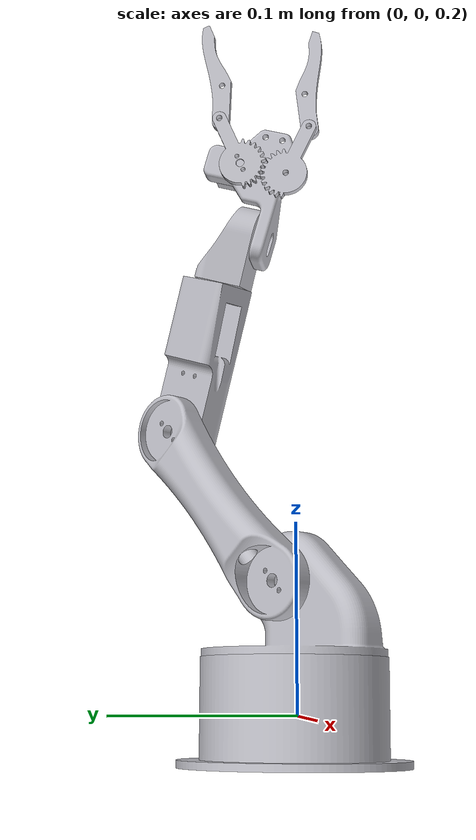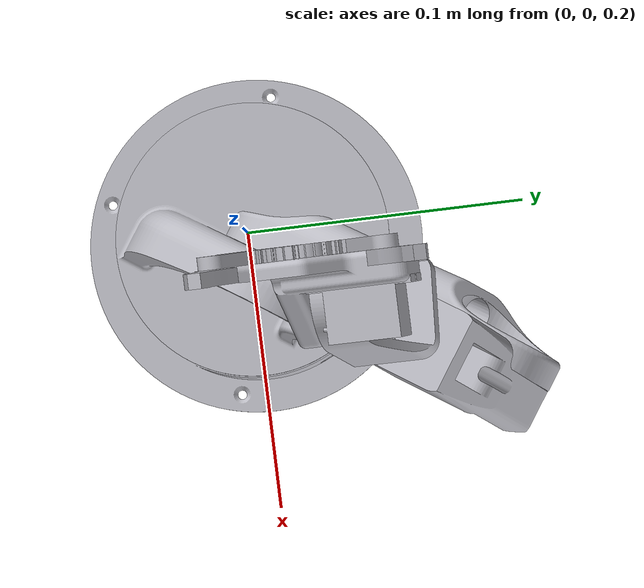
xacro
<?xml version="1.0" ?>
<robot name="robot" xmlns:xacro="http://www.ros.org/wiki/xacro">

<xacro:include filename="$(find robot_description)/urdf/materials.xacro" />
<xacro:include filename="$(find robot_description)/urdf/robot.trans" />
<xacro:include filename="$(find robot_description)/urdf/robot.gazebo" />

<gazebo>
  <plugin name="gazebo_ros_control" filename="libgazebo_ros_control.so">
    <robotNamespace>/</robotNamespace>
  </plugin>
</gazebo>

<link name="world"/>
<joint name="base_joint" type="fixed">
<parent link="world"/>
<child link="base_link"/>
<origin rpy="0 0 0" xyz="0.0 0.0 0.17"/>
</joint>

<link name="base_link">
  <inertial>
    <origin xyz="0.005160276109435298 0.0027084129987447227 0.026026914877480482" rpy="0 0.2 0"/>
    <mass value="0.7428696086251847"/>
    <inertia ixx="0.001021" iyy="0.001049" izz="0.001616" ixy="-2e-05" iyz="7e-06" ixz="7e-06"/>
  </inertial>
  <visual>
    <origin xyz="0 0 0" rpy="0 0 0"/>
    <geometry>
      <mesh filename="package://robot_description/meshes/base_link.stl" scale="0.001 0.001 0.001"/>
    </geometry>
    <material name="silver"/>
  </visual>
  <collision>
    <origin xyz="0 0 0" rpy="0 0 0"/>
    <geometry>
      <mesh filename="package://robot_description/meshes/base_link.stl" scale="0.001 0.001 0.001"/>
    </geometry>
  </collision>
</link>

<link name="Arm_02.step_1">
  <inertial>
    <origin xyz="-0.003592446758183772 -0.014135752925911696 0.0394951780060995" rpy="0 0.2 0"/>
    <mass value="0.3697152157519886"/>
    <inertia ixx="0.000407" iyy="0.000389" izz="0.000105" ixy="-3e-05" iyz="8.1e-05" ixz="6.6e-05"/>
  </inertial>
  <visual>
    <origin xyz="-0.055174 -0.076664 -0.191534" rpy="0 0 0"/>
    <geometry>
      <mesh filename="package://robot_description/meshes/Arm_02.step_1.stl" scale="0.001 0.001 0.001"/>
    </geometry>
    <material name="silver"/>
  </visual>
  <collision>
    <origin xyz="-0.055174 -0.076664 -0.191534" rpy="0 0 0"/>
    <geometry>
      <mesh filename="package://robot_description/meshes/Arm_02.step_1.stl" scale="0.001 0.001 0.001"/>
    </geometry>
  </collision>
</link>

<link name="Arm_03.step_1">
  <inertial>
    <origin xyz="-0.008471262397111417 -0.00952529589921284 0.014418181004394182" rpy="0 0.2 0"/>
    <mass value="0.12929190705351673"/>
    <inertia ixx="3e-05" iyy="3.6e-05" izz="2.4e-05" ixy="-1e-06" iyz="9e-06" ixz="2e-06"/>
  </inertial>
  <visual>
    <origin xyz="-0.038998 -0.045832 -0.274607" rpy="0 0 0"/>
    <geometry>
      <mesh filename="package://robot_description/meshes/Arm_03.step_1.stl" scale="0.001 0.001 0.001"/>
    </geometry>
    <material name="silver"/>
  </visual>
  <collision>
    <origin xyz="-0.038998 -0.045832 -0.274607" rpy="0 0 0"/>
    <geometry>
      <mesh filename="package://robot_description/meshes/Arm_03.step_1.stl" scale="0.001 0.001 0.001"/>
    </geometry>
  </collision>
</link>

<link name="Part_2_gear_2.step_1">
  <inertial>
    <origin xyz="-0.0019345128307690623 -0.005439855470670305 0.00023644869023009552" rpy="0 0 0"/>
    <mass value="0.020866715753086653"/>
    <inertia ixx="4e-06" iyy="1e-06" izz="3e-06" ixy="0.0" iyz="-0.0" ixz="-0.0"/>
  </inertial>
  <visual>
    <origin xyz="-0.015316 -0.006244 -0.330746" rpy="0 0 0"/>
    <geometry>
      <mesh filename="package://robot_description/meshes/Part_2_gear_2.step_1.stl" scale="0.001 0.001 0.001"/>
    </geometry>
    <material name="silver"/>
  </visual>
  <collision>
    <origin xyz="-0.015316 -0.006244 -0.330746" rpy="0 0 0"/>
    <geometry>
      <mesh filename="package://robot_description/meshes/Part_2_gear_2.step_1.stl" scale="0.001 0.001 0.001"/>
    </geometry>
  </collision>
</link>

<link name="Gripper_Base.step_1">
  <inertial>
    <origin xyz="-0.006039901919946484 -0.0027152948165855076 0.025224632891133025" rpy="0 0 0"/>
    <mass value="0.1259188443483361"/>
    <inertia ixx="7.1e-05" iyy="6.2e-05" izz="2.1e-05" ixy="0.0" iyz="-4e-06" ixz="1e-05"/>
  </inertial>
  <visual>
    <origin xyz="-0.028594 -0.025213 -0.296325" rpy="0 0 0"/>
    <geometry>
      <mesh filename="package://robot_description/meshes/Gripper_Base.step_1.stl" scale="0.001 0.001 0.001"/>
    </geometry>
    <material name="silver"/>
  </visual>
  <collision>
    <origin xyz="-0.028594 -0.025213 -0.296325" rpy="0 0 0"/>
    <geometry>
      <mesh filename="package://robot_description/meshes/Gripper_Base.step_1.stl" scale="0.001 0.001 0.001"/>
    </geometry>
  </collision>
</link>

<link name="Servo_motor_micro_9g.step_1">
  <inertial>
    <origin xyz="0.014115900275686065 0.004671900820636288 0.0010411024196047558" rpy="0 0 0"/>
    <mass value="0.05634268516919814"/>
    <inertia ixx="3e-06" iyy="4e-06" izz="5e-06" ixy="-0.0" iyz="-1e-06" ixz="-0.0"/>
  </inertial>
  <visual>
    <origin xyz="-0.015122 -0.032168 -0.337924" rpy="0 0 0"/>
    <geometry>
      <mesh filename="package://robot_description/meshes/Servo_motor_micro_9g.step_1.stl" scale="0.001 0.001 0.001"/>
    </geometry>
    <material name="silver"/>
  </visual>
  <collision>
    <origin xyz="-0.015122 -0.032168 -0.337924" rpy="0 0 0"/>
    <geometry>
      <mesh filename="package://robot_description/meshes/Servo_motor_micro_9g.step_1.stl" scale="0.001 0.001 0.001"/>
    </geometry>
  </collision>
</link>

<link name="Part_1_gear_2.step_1">
  <inertial>
    <origin xyz="-0.0019952182319104145 0.0042041364935786404 0.0036744285304463054" rpy="0 0 0"/>
    <mass value="0.020267194631427798"/>
    <inertia ixx="4e-06" iyy="1e-06" izz="2e-06" ixy="0.0" iyz="-1e-06" ixz="-0.0"/>
  </inertial>
  <visual>
    <origin xyz="-0.015122 -0.032168 -0.337924" rpy="0 0 0"/>
    <geometry>
      <mesh filename="package://robot_description/meshes/Part_1_gear_2.step_1.stl" scale="0.001 0.001 0.001"/>
    </geometry>
    <material name="silver"/>
  </visual>
  <collision>
    <origin xyz="-0.015122 -0.032168 -0.337924" rpy="0 0 0"/>
    <geometry>
      <mesh filename="package://robot_description/meshes/Part_1_gear_2.step_1.stl" scale="0.001 0.001 0.001"/>
    </geometry>
  </collision>
</link>

<link name="robot_Gripper.step1_v1_1">
  <inertial>
    <origin xyz="0.002340459323116762 -0.002989299603796597 0.003797449185666102" rpy="0 0 0"/>
    <mass value="0.020053604711887"/>
    <inertia ixx="6e-06" iyy="6e-06" izz="0.0" ixy="0.0" iyz="1e-06" ixz="-0.0"/>
  </inertial>
  <visual>
    <origin xyz="-0.015937 0.02234 -0.350609" rpy="0 0 0"/>
    <geometry>
      <mesh filename="package://robot_description/meshes/robot_Gripper.step1_v1_1.stl" scale="0.001 0.001 0.001"/>
    </geometry>
    <material name="silver"/>
  </visual>
  <collision>
    <origin xyz="-0.015937 0.02234 -0.350609" rpy="0 0 0"/>
    <geometry>
      <mesh filename="package://robot_description/meshes/robot_Gripper.step1_v1_1.stl" scale="0.001 0.001 0.001"/>
    </geometry>
  </collision>
</link>

<link name="Waist.step_1">
  <inertial>
    <origin xyz="0.006414134056216764 -0.003189639915015318 0.01955990648290272" rpy="0 0 0"/>
    <mass value="0.5781357922590845"/>
    <inertia ixx="0.000493" iyy="0.00044" izz="0.000467" ixy="-6.4e-05" iyz="-1.8e-05" ixz="-7.1e-05"/>
  </inertial>
  <visual>
    <origin xyz="-0.003126 -0.001866 -0.059863" rpy="0 0 0"/>
    <geometry>
      <mesh filename="package://robot_description/meshes/Waist.step_1.stl" scale="0.001 0.001 0.001"/>
    </geometry>
    <material name="silver"/>
  </visual>
  <collision>
    <origin xyz="-0.003126 -0.001866 -0.059863" rpy="0 0 0"/>
    <geometry>
      <mesh filename="package://robot_description/meshes/Waist.step_1.stl" scale="0.001 0.001 0.001"/>
    </geometry>
  </collision>
</link>

<link name="Arm_01.step_1">
  <inertial>
    <origin xyz="0.01466432189256404 0.03730233924473003 0.0453548332023245" rpy="0 0 0"/>
    <mass value="0.5035804638838921"/>
    <inertia ixx="0.000749" iyy="0.000603" izz="0.000388" ixy="-0.000161" iyz="-0.00031" ixz="-0.000197"/>
  </inertial>
  <visual>
    <origin xyz="-0.012969 -0.010778 -0.100553" rpy="0 0 0"/>
    <geometry>
      <mesh filename="package://robot_description/meshes/Arm_01.step_1.stl" scale="0.001 0.001 0.001"/>
    </geometry>
    <material name="silver"/>
  </visual>
  <collision>
    <origin xyz="-0.012969 -0.010778 -0.100553" rpy="0 0 0"/>
    <geometry>
      <mesh filename="package://robot_description/meshes/Arm_01.step_1.stl" scale="0.001 0.001 0.001"/>
    </geometry>
  </collision>
</link>

<link name="Gripper.step_1">
  <inertial>
    <origin xyz="0.0023163136457740787 0.00044229427431653756 0.004823903757310233" rpy="0 0 0"/>
    <mass value="0.02005360471188671"/>
    <inertia ixx="6e-06" iyy="5e-06" izz="1e-06" ixy="0.0" iyz="2e-06" ixz="-0.0"/>
  </inertial>
  <visual>
    <origin xyz="-0.015498 -0.043643 -0.372614" rpy="0 0 0"/>
    <geometry>
      <mesh filename="package://robot_description/meshes/Gripper.step_1.stl" scale="0.001 0.001 0.001"/>
    </geometry>
    <material name="silver"/>
  </visual>
  <collision>
    <origin xyz="-0.015498 -0.043643 -0.372614" rpy="0 0 0"/>
    <geometry>
      <mesh filename="package://robot_description/meshes/Gripper.step_1.stl" scale="0.001 0.001 0.001"/>
    </geometry>
  </collision>
</link>

<joint name="Revolute_4" type="revolute">
  <origin xyz="0.042205 0.065886 0.090981" rpy="0 0 0"/>
  <parent link="Arm_01.step_1"/>
  <child link="Arm_02.step_1"/>
  <axis xyz="-0.828979 0.558915 -0.020195"/>
  <limit upper="3.141593" lower="0.0" effort="100" velocity="100"/>
</joint>

<joint name="Revolute_5" type="revolute">
  <origin xyz="-0.016176 -0.030832 0.083073" rpy="0 0 0"/>
  <parent link="Arm_02.step_1"/>
  <child link="Arm_03.step_1"/>
  <axis xyz="-0.200205 -0.26284 0.94384"/>
  <limit upper="6.283185" lower="0.0" effort="100" velocity="100"/>
</joint>

<joint name="Revolute_8" type="revolute">
  <origin xyz="-0.013278 -0.018969 0.034421" rpy="0 0 0"/>
  <parent link="Gripper_Base.step_1"/>
  <child link="Part_2_gear_2.step_1"/>
  <axis xyz="0.999826 0.011538 -0.014668"/>
  <limit upper="0.698132" lower="-0.558505" effort="100" velocity="100"/>
</joint>

<joint name="Revolute_24" type="revolute">
  <origin xyz="-0.010404 -0.020619 0.021718" rpy="0 0 0"/>
  <parent link="Arm_03.step_1"/>
  <child link="Gripper_Base.step_1"/>
  <axis xyz="-0.007206 0.963712 0.266845"/>
  <limit upper="1.570796" lower="-1.570796" effort="100" velocity="100"/>
</joint>

<joint name="Rigid_25" type="fixed">
  <origin xyz="-0.013472 0.006955 0.041599" rpy="0 0 0"/>
  <parent link="Gripper_Base.step_1"/>
  <child link="Servo_motor_micro_9g.step_1"/>
</joint>

<joint name="Revolute_26" type="revolute">
  <origin xyz="0.0 0.0 0.0" rpy="0 0 0"/>
  <parent link="Servo_motor_micro_9g.step_1"/>
  <child link="Part_1_gear_2.step_1"/>
  <axis xyz="-0.999826 -0.011538 0.014668"/>
  <limit upper="1.239184" lower="0.034907" effort="100" velocity="100"/>
</joint>

<joint name="Revolute_31" type="revolute">
  <origin xyz="0.000621 -0.028584 0.019863" rpy="0 0 0"/>
  <parent link="Part_2_gear_2.step_1"/>
  <child link="robot_Gripper.step1_v1_1"/>
  <axis xyz="-0.999826 -0.011538 0.014668"/>
  <limit upper="1.134464" lower="-0.645772" effort="100" velocity="100"/>
</joint>

<joint name="Revolute_42" type="continuous">
  <origin xyz="0.003126 0.001866 0.059863" rpy="0 0 0"/>
  <parent link="base_link"/>
  <child link="Waist.step_1"/>
  <axis xyz="-0.030811 -0.009585 0.999479"/>
</joint>

<joint name="Revolute_43" type="continuous">
  <origin xyz="0.009843 0.008912 0.04069" rpy="0 0 0"/>
  <parent link="Waist.step_1"/>
  <child link="Arm_01.step_1"/>
  <axis xyz="0.828979 -0.558915 0.020195"/>
</joint>

<joint name="Revolute_44" type="revolute">
  <origin xyz="0.000376 0.011475 0.03469" rpy="0 0 0"/>
  <parent link="Part_1_gear_2.step_1"/>
  <child link="Gripper.step_1"/>
  <axis xyz="0.999826 0.011538 -0.014668"/>
  <limit upper="1.204277" lower="0.0" effort="100" velocity="100"/>
</joint>

<transmission name="Revolute_42_tran">
  <type>transmission_interface/SimpleTransmission</type>
  <joint name="Revolute_42">
    <hardwareInterface>hardware_interface/PositionJointInterface</hardwareInterface>
  </joint>
  <actuator name="Revolute_42_actr">
    <hardwareInterface>hardware_interface/PositionJointInterface</hardwareInterface>
    <mechanicalReduction>1</mechanicalReduction>
  </actuator>
</transmission>

<transmission name="Revolute_4_tran">
  <type>transmission_interface/SimpleTransmission</type>
  <joint name="Revolute_4">
    <hardwareInterface>hardware_interface/PositionJointInterface</hardwareInterface>
  </joint>
  <actuator name="Revolute_4_actr">
    <hardwareInterface>hardware_interface/PositionJointInterface</hardwareInterface>
    <mechanicalReduction>1</mechanicalReduction>
  </actuator>
</transmission>

<transmission name="Revolute_5_tran">
  <type>transmission_interface/SimpleTransmission</type>
  <joint name="Revolute_5">
    <hardwareInterface>hardware_interface/PositionJointInterface</hardwareInterface>
  </joint>
  <actuator name="Revolute_5_actr">
    <hardwareInterface>hardware_interface/PositionJointInterface</hardwareInterface>
    <mechanicalReduction>1</mechanicalReduction>
  </actuator>
</transmission>

<transmission name="Revolute_8_tran">
  <type>transmission_interface/SimpleTransmission</type>
  <joint name="Revolute_8">
    <hardwareInterface>hardware_interface/PositionJointInterface</hardwareInterface>
  </joint>
  <actuator name="Revolute_8_actr">
    <hardwareInterface>hardware_interface/PositionJointInterface</hardwareInterface>
    <mechanicalReduction>1</mechanicalReduction>
  </actuator>
</transmission>

<transmission name="Revolute_24_tran">
  <type>transmission_interface/SimpleTransmission</type>
  <joint name="Revolute_24">
    <hardwareInterface>hardware_interface/PositionJointInterface</hardwareInterface>
  </joint>
  <actuator name="Revolute_24_actr">
    <hardwareInterface>hardware_interface/PositionJointInterface</hardwareInterface>
    <mechanicalReduction>1</mechanicalReduction>
  </actuator>
</transmission>

<transmission name="Revolute_26_tran">
  <type>transmission_interface/SimpleTransmission</type>
  <joint name="Revolute_26">
    <hardwareInterface>hardware_interface/PositionJointInterface</hardwareInterface>
  </joint>
  <actuator name="Revolute_26_actr">
    <hardwareInterface>hardware_interface/PositionJointInterface</hardwareInterface>
    <mechanicalReduction>1</mechanicalReduction>
  </actuator>
</transmission>

<transmission name="Revolute_31_tran">
  <type>transmission_interface/SimpleTransmission</type>
  <joint name="Revolute_31">
    <hardwareInterface>hardware_interface/PositionJointInterface</hardwareInterface>
  </joint>
  <actuator name="Revolute_31_actr">
    <hardwareInterface>hardware_interface/PositionJointInterface</hardwareInterface>
    <mechanicalReduction>1</mechanicalReduction>
  </actuator>
</transmission>

<transmission name="Revolute_44_tran">
  <type>transmission_interface/SimpleTransmission</type>
  <joint name="Revolute_44">
    <hardwareInterface>hardware_interface/PositionJointInterface</hardwareInterface>
  </joint>
  <actuator name="Revolute_44_actr">
    <hardwareInterface>hardware_interface/PositionJointInterface</hardwareInterface>
    <mechanicalReduction>1</mechanicalReduction>
  </actuator>
</transmission>

<transmission name="Revolute_42_tran">
  <type>transmission_interface/SimpleTransmission</type>
  <joint name="Revolute_42">
    <hardwareInterface>hardware_interface/PositionJointInterface</hardwareInterface>
  </joint>
  <actuator name="Revolute_42_actr">
    <hardwareInterface>hardware_interface/PositionJointInterface</hardwareInterface>
    <mechanicalReduction>1</mechanicalReduction>
  </actuator>
</transmission>

<transmission name="Revolute_43_tran">
  <type>transmission_interface/SimpleTransmission</type>
  <joint name="Revolute_43">
    <hardwareInterface>hardware_interface/PositionJointInterface</hardwareInterface>
  </joint>
  <actuator name="Revolute_43_actr">
    <hardwareInterface>hardware_interface/PositionJointInterface</hardwareInterface>
    <mechanicalReduction>1</mechanicalReduction>
  </actuator>
</transmission>

<gazebo reference="base_link">
  <material>${body_color}</material>
  <mu1>0.2</mu1>
  <mu2>0.2</mu2>
  <selfCollide>true</selfCollide>
  <gravity>true</gravity>
</gazebo>

<gazebo reference="Arm_02.step_1">
  <material>${body_color}</material>
  <mu1>0.2</mu1>
  <mu2>0.2</mu2>
  <selfCollide>true</selfCollide>
</gazebo>

<gazebo reference="Arm_03.step_1">
  <material>${body_color}</material>
  <mu1>0.2</mu1>
  <mu2>0.2</mu2>
  <selfCollide>true</selfCollide>
</gazebo>

<gazebo reference="Part_2_gear_2.step_1">
  <material>${body_color}</material>
  <mu1>0.2</mu1>
  <mu2>0.2</mu2>
  <selfCollide>true</selfCollide>
</gazebo>

<gazebo reference="Gripper_Base.step_1">
  <material>${body_color}</material>
  <mu1>0.2</mu1>
  <mu2>0.2</mu2>
  <selfCollide>true</selfCollide>
</gazebo>

<gazebo reference="Servo_motor_micro_9g.step_1">
  <material>${body_color}</material>
  <mu1>0.2</mu1>
  <mu2>0.2</mu2>
  <selfCollide>true</selfCollide>
</gazebo>

<gazebo reference="Part_1_gear_2.step_1">
  <material>${body_color}</material>
  <mu1>0.2</mu1>
  <mu2>0.2</mu2>
  <selfCollide>true</selfCollide>
</gazebo>

<gazebo reference="Gripper.step_1">
  <material>${body_color}</material>
  <mu1>0.2</mu1>
  <mu2>0.2</mu2>
  <selfCollide>true</selfCollide>
</gazebo>

<gazebo reference="Gripper.step_1">
  <material>${body_color}</material>
  <mu1>0.2</mu1>
  <mu2>0.2</mu2>
  <selfCollide>true</selfCollide>
</gazebo>

<gazebo reference="robot_Gripper.step1_v1_1">
  <material>${body_color}</material>
  <mu1>0.2</mu1>
  <mu2>0.2</mu2>
  <selfCollide>true</selfCollide>
</gazebo>

<gazebo reference="robot_Gripper.step1_v1_1">
  <material>${body_color}</material>
  <mu1>0.2</mu1>
  <mu2>0.2</mu2>
  <selfCollide>true</selfCollide>
</gazebo>

<gazebo reference="Waist.step_1">
  <material>${body_color}</material>
  <mu1>0.2</mu1>
  <mu2>0.2</mu2>
  <selfCollide>true</selfCollide>
</gazebo>

<gazebo reference="Arm_01.step_1">
  <material>${body_color}</material>
  <mu1>0.2</mu1>
  <mu2>0.2</mu2>
  <selfCollide>true</selfCollide>
</gazebo>

</robot>

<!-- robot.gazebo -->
<robot name="robot" xmlns:xacro="http://www.ros.org/wiki/xacro" >

<xacro:property name="body_color" value="Gazebo/Silver" />

<gazebo>
  <plugin name="control" filename="libgazebo_ros_control.so">
  	<robotNamespace>/</robotNamespace>
  </plugin>
</gazebo>
<gazebo reference="base_link">
  <material>${body_color}</material>
  <mu1>0.2</mu1>
  <mu2>0.2</mu2>
  <selfCollide>true</selfCollide>
  <gravity>true</gravity>
</gazebo>

<gazebo reference="Arm_02.step_1">
  <material>${body_color}</material>
  <mu1>0.2</mu1>
  <mu2>0.2</mu2>
  <selfCollide>true</selfCollide>
</gazebo>

<gazebo reference="Arm_03.step_1">
  <material>${body_color}</material>
  <mu1>0.2</mu1>
  <mu2>0.2</mu2>
  <selfCollide>true</selfCollide>
</gazebo>

<gazebo reference="Part_2_gear_2.step_1">
  <material>${body_color}</material>
  <mu1>0.2</mu1>
  <mu2>0.2</mu2>
  <selfCollide>true</selfCollide>
</gazebo>

<gazebo reference="Gripper_Base.step_1">
  <material>${body_color}</material>
  <mu1>0.2</mu1>
  <mu2>0.2</mu2>
  <selfCollide>true</selfCollide>
</gazebo>

<gazebo reference="Servo_motor_micro_9g.step_1">
  <material>${body_color}</material>
  <mu1>0.2</mu1>
  <mu2>0.2</mu2>
  <selfCollide>true</selfCollide>
</gazebo>

<gazebo reference="Part_1_gear_2.step_1">
  <material>${body_color}</material>
  <mu1>0.2</mu1>
  <mu2>0.2</mu2>
  <selfCollide>true</selfCollide>
</gazebo>

<gazebo reference="Gripper.step_1">
  <material>${body_color}</material>
  <mu1>0.2</mu1>
  <mu2>0.2</mu2>
  <selfCollide>true</selfCollide>
</gazebo>

<gazebo reference="Gripper.step_1">
  <material>${body_color}</material>
  <mu1>0.2</mu1>
  <mu2>0.2</mu2>
  <selfCollide>true</selfCollide>
</gazebo>

<gazebo reference="robot_Gripper.step1_v1_1">
  <material>${body_color}</material>
  <mu1>0.2</mu1>
  <mu2>0.2</mu2>
  <selfCollide>true</selfCollide>
</gazebo>

<gazebo reference="robot_Gripper.step1_v1_1">
  <material>${body_color}</material>
  <mu1>0.2</mu1>
  <mu2>0.2</mu2>
  <selfCollide>true</selfCollide>
</gazebo>

<gazebo reference="Waist.step_1">
  <material>${body_color}</material>
  <mu1>0.2</mu1>
  <mu2>0.2</mu2>
  <selfCollide>true</selfCollide>
</gazebo>

<gazebo reference="Arm_01.step_1">
  <material>${body_color}</material>
  <mu1>0.2</mu1>
  <mu2>0.2</mu2>
  <selfCollide>true</selfCollide>
</gazebo>

</robot>
